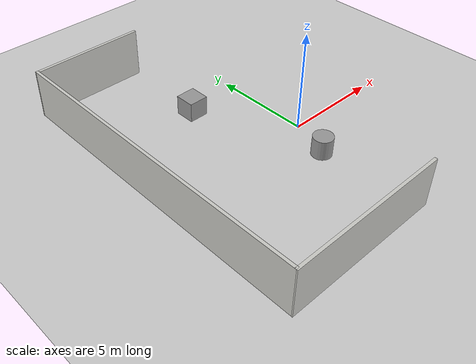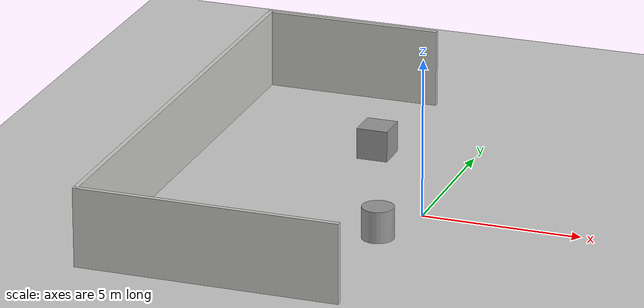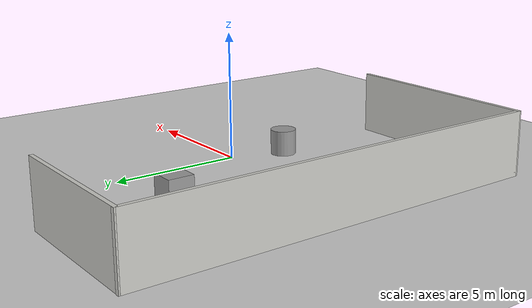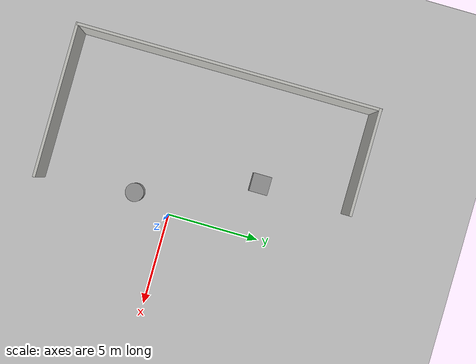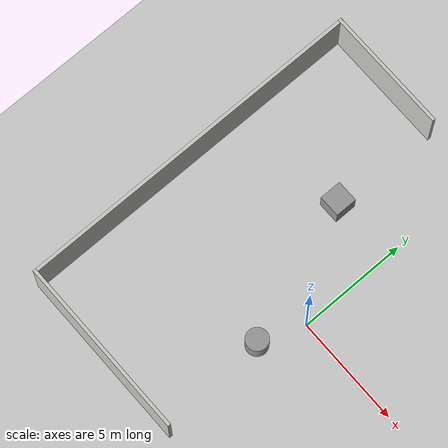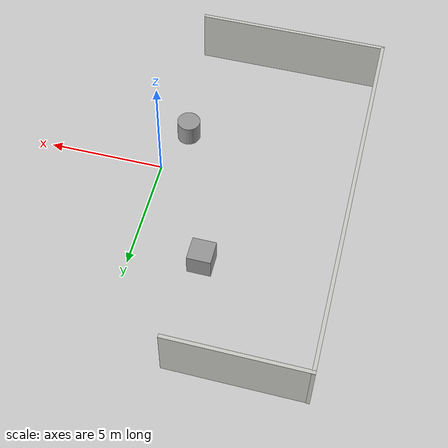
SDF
<sdf version="1.6">
 <world name="default">
  <light name="sun" type="directional">
   <pose>0 0 10 0 -0 0</pose>
   <diffuse>0.8 0.8 0.8 1</diffuse>
   <specular>0.2 0.2 0.2 1</specular>
   <attenuation>
    <range>1000</range>
    <constant>0.9</constant>
    <linear>0.01</linear>
    <quadratic>0.001</quadratic>
   </attenuation>
   <direction>-0.5 0.1 -0.9</direction>
  </light>
  <model name="ground_plane">
   <static>1</static>
   <link name="link">
    <collision name="collision">
     <geometry><plane><normal>0 0 1</normal><size>100 100</size></plane></geometry>
     <surface>
      <contact><collide_bitmask>65535</collide_bitmask></contact>
      <friction><ode><mu>100</mu><mu2>50</mu2></ode></friction>
     </surface>
    </collision>
    <visual name="visual">
     <cast_shadows>0</cast_shadows>
     <geometry><plane><normal>0 0 1</normal><size>100 100</size></plane></geometry>
     <material>
      <script><uri>file://media/materials/scripts/gazebo.material</uri><name>Gazebo/Grey</name></script>
     </material>
    </visual>
   </link>
  </model>
  <gravity>0 0 -9.8</gravity>
  <magnetic_field>6e-06 2.3e-05 -4.2e-05</magnetic_field>
  <atmosphere type="adiabatic"/>
  <physics name="default_physics" default="0" type="ode">
   <max_step_size>0.001</max_step_size>
   <real_time_factor>1</real_time_factor>
   <real_time_update_rate>1000</real_time_update_rate>
  </physics>
  <scene><ambient>0.4 0.4 0.4 1</ambient><background>0.7 0.7 0.7 1</background><shadows>1</shadows></scene>
  <audio><device>default</device></audio>
  <spherical_coordinates>
   <surface_model>EARTH_WGS84</surface_model>
   <latitude_deg>0</latitude_deg>
   <longitude_deg>0</longitude_deg>
   <elevation>0</elevation>
   <heading_deg>0</heading_deg>
  </spherical_coordinates>
  <model name="Untitled">
   <link name="link_0">
    <inertial>
     <mass>1</mass>
     <inertia><ixx>0.145833</ixx><ixy>0</ixy><ixz>0</ixz><iyy>0.145833</iyy><iyz>0</iyz><izz>0.125</izz></inertia>
    </inertial>
    <pose>1.9291 -3.12092 0.166667 0 -0 0</pose>
    <visual name="visual">
     <geometry><cylinder><radius>0.5</radius><length>1</length></cylinder></geometry>
     <material>
      <lighting>1</lighting>
      <script><uri>file://media/materials/scripts/gazebo.material</uri><name>Gazebo/Grey</name></script>
     </material>
    </visual>
    <collision name="collision">
     <geometry><cylinder><radius>0.5</radius><length>1</length></cylinder></geometry>
     <surface>
      <friction>
       <ode><mu>1</mu><mu2>1</mu2><fdir1>0 0 0</fdir1><slip1>0</slip1><slip2>0</slip2></ode>
       <torsional>
        <coefficient>1</coefficient>
        <patch_radius>0</patch_radius>
        <surface_radius>0</surface_radius>
        <use_patch_radius>1</use_patch_radius>
        <ode><slip>0</slip></ode>
       </torsional>
      </friction>
      <bounce><restitution_coefficient>0</restitution_coefficient><threshold>1e+06</threshold></bounce>
      <contact>
       <collide_without_contact>0</collide_without_contact>
       <collide_without_contact_bitmask>1</collide_without_contact_bitmask>
       <collide_bitmask>1</collide_bitmask>
       <ode>
        <soft_cfm>0</soft_cfm>
        <soft_erp>0.2</soft_erp>
        <kp>1e+13</kp>
        <kd>1</kd>
        <max_vel>0.01</max_vel>
        <min_depth>0</min_depth>
       </ode>
       <bullet>
        <split_impulse>1</split_impulse>
        <split_impulse_penetration_threshold>-0.01</split_impulse_penetration_threshold>
        <soft_cfm>0</soft_cfm>
        <soft_erp>0.2</soft_erp>
        <kp>1e+13</kp>
        <kd>1</kd>
       </bullet>
      </contact>
     </surface>
    </collision>
   </link>
   <link name="link_1">
    <inertial>
     <mass>1</mass>
     <inertia>
      <ixx>0.166667</ixx>
      <ixy>0</ixy>
      <ixz>0</ixz>
      <iyy>0.166667</iyy>
      <iyz>0</iyz>
      <izz>0.166667</izz>
     </inertia>
    </inertial>
    <pose>-0.323266 3.21041 0.166667 0 -0 0</pose>
    <visual name="visual">
     <geometry><box><size>1 1 1</size></box></geometry>
     <material>
      <lighting>1</lighting>
      <script><uri>file://media/materials/scripts/gazebo.material</uri><name>Gazebo/Grey</name></script>
     </material>
    </visual>
    <collision name="collision">
     <geometry><box><size>1 1 1</size></box></geometry>
     <surface>
      <friction>
       <ode><mu>1</mu><mu2>1</mu2><fdir1>0 0 0</fdir1><slip1>0</slip1><slip2>0</slip2></ode>
       <torsional>
        <coefficient>1</coefficient>
        <patch_radius>0</patch_radius>
        <surface_radius>0</surface_radius>
        <use_patch_radius>1</use_patch_radius>
        <ode><slip>0</slip></ode>
       </torsional>
      </friction>
      <bounce><restitution_coefficient>0</restitution_coefficient><threshold>1e+06</threshold></bounce>
      <contact>
       <collide_without_contact>0</collide_without_contact>
       <collide_without_contact_bitmask>1</collide_without_contact_bitmask>
       <collide_bitmask>1</collide_bitmask>
       <ode>
        <soft_cfm>0</soft_cfm>
        <soft_erp>0.2</soft_erp>
        <kp>1e+13</kp>
        <kd>1</kd>
        <max_vel>0.01</max_vel>
        <min_depth>0</min_depth>
       </ode>
       <bullet>
        <split_impulse>1</split_impulse>
        <split_impulse_penetration_threshold>-0.01</split_impulse_penetration_threshold>
        <soft_cfm>0</soft_cfm>
        <soft_erp>0.2</soft_erp>
        <kp>1e+13</kp>
        <kd>1</kd>
       </bullet>
      </contact>
     </surface>
    </collision>
   </link>
   <model name="world">
    <pose>-1.60583 -0.089488 -0.333333 0 -0 0</pose>
    <link name="Wall_10">
     <collision name="Wall_10_Collision">
      <geometry><box><size>5.75 0.15 2.5</size></box></geometry>
      <pose>0 0 1.25 0 -0 0</pose>
     </collision>
     <visual name="Wall_10_Visual">
      <pose>0 0 1.25 0 -0 0</pose>
      <geometry><box><size>5.75 0.15 2.5</size></box></geometry>
      <material>
       <script><uri>file://media/materials/scripts/gazebo.material</uri><name>Gazebo/CeilingTiled</name></script>
       <ambient>1 1 1 1</ambient>
      </material>
      <meta><layer>0</layer></meta>
     </visual>
     <pose>-1.24752 8.07556 0 0 -0 0</pose>
    </link>
    <link name="Wall_12">
     <collision name="Wall_12_Collision">
      <geometry><box><size>16.2661 0.15 2.5</size></box></geometry>
      <pose>0 0 1.25 0 -0 0</pose>
     </collision>
     <visual name="Wall_12_Visual">
      <pose>0 0 1.25 0 -0 0</pose>
      <geometry><box><size>16.2661 0.15 2.5</size></box></geometry>
      <material>
       <script><uri>file://media/materials/scripts/gazebo.material</uri><name>Gazebo/CeilingTiled</name></script>
       <ambient>1 1 1 1</ambient>
      </material>
      <meta><layer>0</layer></meta>
     </visual>
     <pose>-4.04876 0.030757 0 0 -0 -1.57095</pose>
    </link>
    <link name="Wall_13">
     <collision name="Wall_13_Collision">
      <geometry><box><size>8.25 0.15 2.5</size></box></geometry>
      <pose>0 0 1.25 0 -0 0</pose>
     </collision>
     <visual name="Wall_13_Visual">
      <pose>0 0 1.25 0 -0 0</pose>
      <geometry><box><size>8.25 0.15 2.5</size></box></geometry>
      <material>
       <script><uri>file://media/materials/scripts/gazebo.material</uri><name>Gazebo/CeilingTiled</name></script>
       <ambient>1 1 1 1</ambient>
      </material>
      <meta><layer>0</layer></meta>
     </visual>
     <pose>6e-06 -8.0888 0 0 -0 0</pose>
    </link>
    <static>1</static>
   </model>
   <static>0</static>
   <pose>-2.63221 1.08625 0.333333 0 -0 0</pose>
  </model>
 </world>
</sdf>
